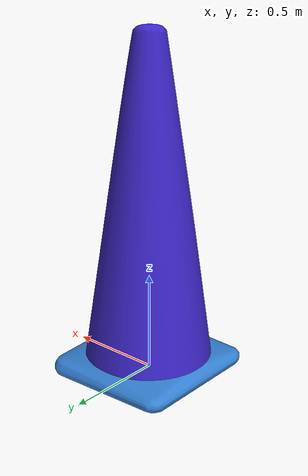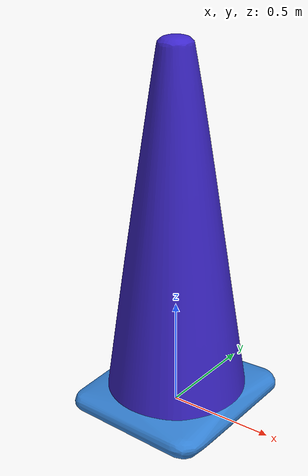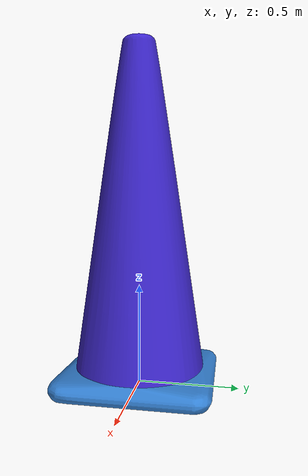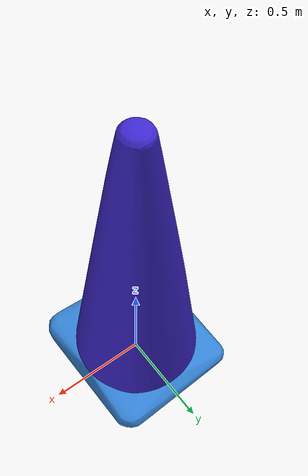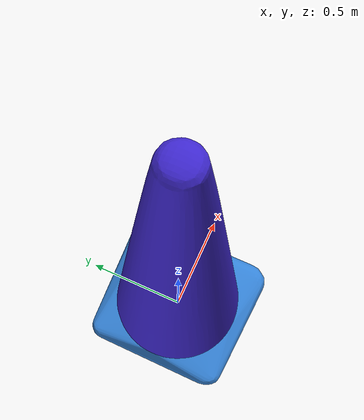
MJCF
<mujoco model="cone">
  <default>
    <default class="visual">
      <geom group="1" type="mesh" contype="0" conaffinity="0"/>
    </default>
    <default class="collision">
      <geom group="0" type="mesh"/>
    </default>
  </default>
  <asset>
    <texture type="2d" name="texture_diffuse" file="texture_diffuse.png"/>
    <material name="CustomMaterial" texture="texture_diffuse" specular="0.5" shininess="0.5"/>
    <mesh name="cone" file="cone.obj"/>
    <mesh name="cone_collision_0" file="cone_collision_0.obj"/>
    <mesh name="cone_collision_1" file="cone_collision_1.obj"/>
  </asset>
  <worldbody>
    <body>
      <body name="object">
        <geom material="CustomMaterial" mesh="cone" class="visual"/>
        <geom mesh="cone_collision_0" rgba="0.20663505448996922 0.5133156988988399 0.8399718303976931 1" class="collision"/>
        <geom mesh="cone_collision_1" rgba="0.24222184550391235 0.15141436278686593 0.8082882680003649 1" class="collision"/>
      </body>
    </body>
  </worldbody>
</mujoco>
